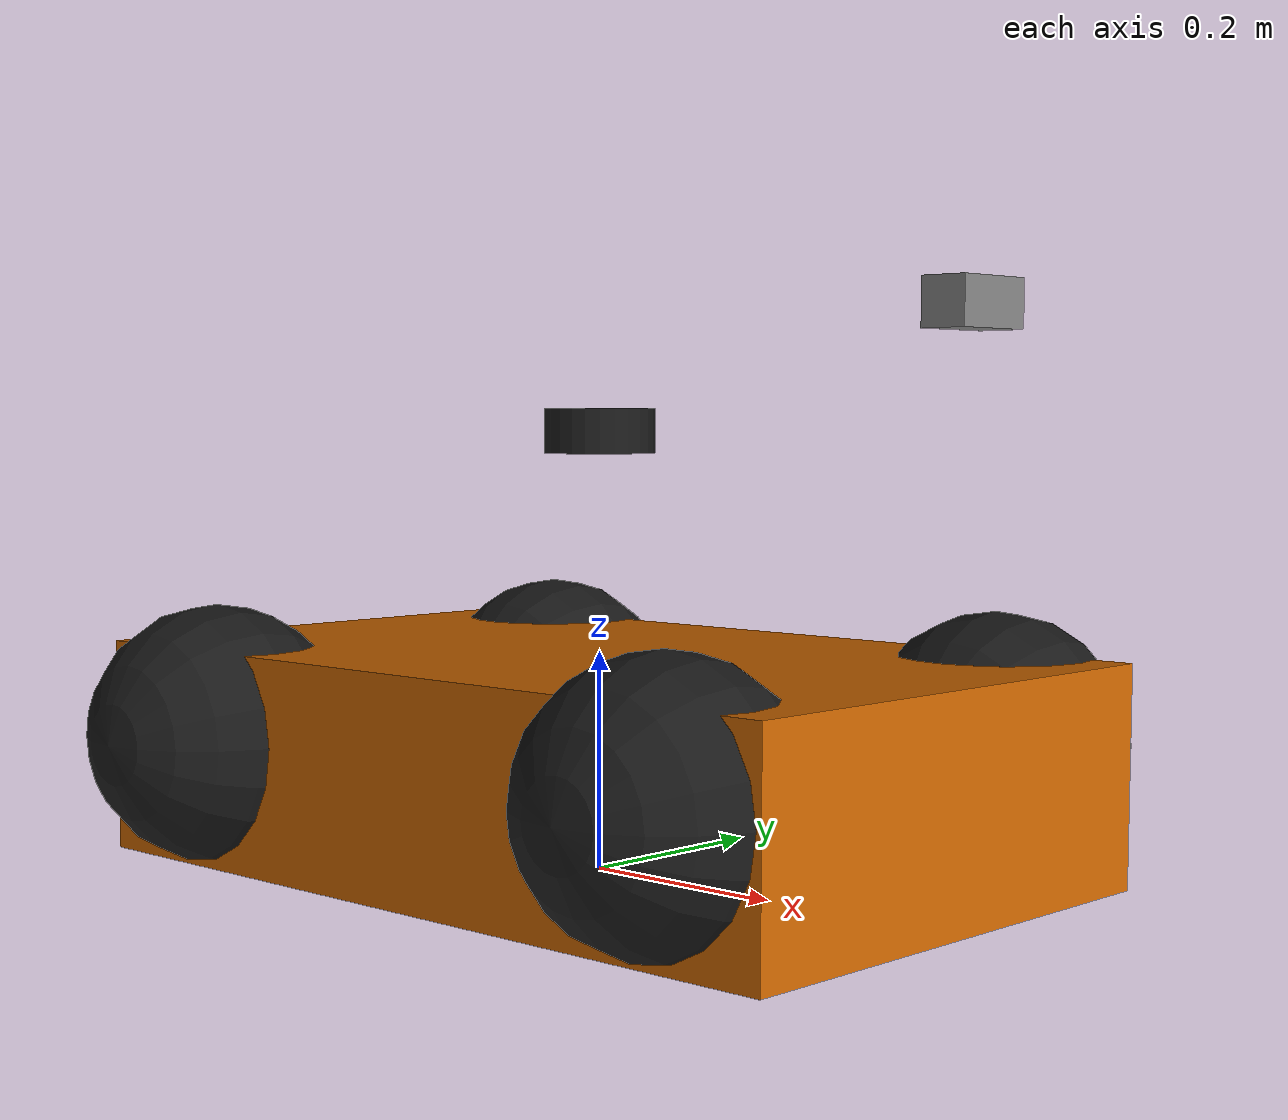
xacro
<?xml version="1.0"?>
<robot name="mecanum_robot" xmlns:xacro="http://www.ros.org/wiki/xacro"
                             xmlns:gz="http://gazebosim.org/schema">

  <material name="orange"><color rgba="0.8 0.4 0.0 1.0"/></material>
  <material name="black"> <color rgba="0.1 0.1 0.1 1.0"/></material>
  <material name="white"> <color rgba="0.9 0.9 0.9 1.0"/></material>
  <material name="grey">  <color rgba="0.5 0.5 0.5 1.0"/></material>

  <!-- ═══════════════════════════════════════════════════════════════
       BASE BODY
  ═══════════════════════════════════════════════════════════════ -->
  <link name="base_link">
    <collision>
      <origin xyz="0 0 0.1" rpy="0 0 0"/>
      <geometry><box size="0.8 0.5 0.2"/></geometry>
    </collision>
    <visual>
      <origin xyz="0 0 0.1" rpy="0 0 0"/>
      <geometry><box size="0.8 0.5 0.2"/></geometry>
      <material name="orange"/>
    </visual>
    <inertial>
      <origin xyz="0 0 0.1" rpy="0 0 0"/>
      <mass value="10.0"/>
      <inertia ixx="0.22" ixy="0.0" ixz="0.0"
               iyy="0.57" iyz="0.0" izz="0.69"/>
    </inertial>
  </link>

  <!-- ═══════════════════════════════════════════════════════════════
       MECANUM WHEELS  (sphere collision + angled friction)
  ═══════════════════════════════════════════════════════════════ -->
  <xacro:macro name="wheel" params="name x y">
    <joint name="${name}_joint" type="continuous">
      <origin xyz="${x} ${y} 0.12" rpy="${-pi/2} 0 0"/>
      <parent link="base_link"/>
      <child link="${name}"/>
      <axis xyz="0 0 1"/>
      <dynamics damping="0.2"/>
    </joint>
    <link name="${name}">
      <collision><geometry><sphere radius="0.12"/></geometry></collision>
      <visual>
        <geometry><sphere radius="0.12"/></geometry>
        <material name="black"/>
      </visual>
      <inertial>
        <mass value="1.0"/>
        <inertia ixx="0.0096" ixy="0.0" ixz="0.0"
                 iyy="0.0096" iyz="0.0" izz="0.0072"/>
      </inertial>
    </link>
  </xacro:macro>

  <xacro:wheel name="front_left_wheel"  x=" 0.28" y=" 0.22"/>
  <xacro:wheel name="front_right_wheel" x=" 0.28" y="-0.22"/>
  <xacro:wheel name="rear_left_wheel"   x="-0.28" y=" 0.22"/>
  <xacro:wheel name="rear_right_wheel"  x="-0.28" y="-0.22"/>

  <!-- fdir1: FL+RR = (1,-1,0), FR+RL = (1,+1,0) to simulate 45° rollers -->
  <gazebo reference="front_left_wheel">
    <collision><surface><friction><ode>
      <mu>1.0</mu><mu2>0.0</mu2>
      <fdir1 gz:expressed_in="base_link">1 -1 0</fdir1>
    </ode></friction></surface></collision>
  </gazebo>
  <gazebo reference="front_right_wheel">
    <collision><surface><friction><ode>
      <mu>1.0</mu><mu2>0.0</mu2>
      <fdir1 gz:expressed_in="base_link">1 1 0</fdir1>
    </ode></friction></surface></collision>
  </gazebo>
  <gazebo reference="rear_left_wheel">
    <collision><surface><friction><ode>
      <mu>1.0</mu><mu2>0.0</mu2>
      <fdir1 gz:expressed_in="base_link">1 1 0</fdir1>
    </ode></friction></surface></collision>
  </gazebo>
  <gazebo reference="rear_right_wheel">
    <collision><surface><friction><ode>
      <mu>1.0</mu><mu2>0.0</mu2>
      <fdir1 gz:expressed_in="base_link">1 -1 0</fdir1>
    </ode></friction></surface></collision>
  </gazebo>

  <link name="lidar_link">
    <visual>
      <geometry><cylinder radius="0.05" length="0.04"/></geometry>
      <material name="black"/>
    </visual>
    <collision>
      <geometry><cylinder radius="0.05" length="0.04"/></geometry>
    </collision>
    <inertial>
      <mass value="0.1"/>
      <inertia ixx="0.0001" ixy="0" ixz="0"
               iyy="0.0001" iyz="0" izz="0.0001"/>
    </inertial>
  </link>

  <joint name="lidar_joint" type="fixed">
    <origin xyz="0 0 0.4" rpy="0 0 0"/>
    <parent link="base_link"/>
    <child link="lidar_link"/>
  </joint>

  <gazebo reference="lidar_link">
    <sensor name="lidar" type="gpu_lidar">
      <topic>/lidar</topic>
      <gz_frame_id>lidar_link</gz_frame_id>
      <update_rate>10</update_rate>
      <always_on>true</always_on>
      <visualize>false</visualize>
      <lidar>
        <scan>
          <horizontal>
            <samples>360</samples>
            <resolution>1</resolution>
            <min_angle>-3.14159265</min_angle>
            <max_angle>3.14159265</max_angle>
          </horizontal>
        </scan>
        <range><min>0.12</min><max>12.0</max><resolution>0.01</resolution></range>
        <noise><type>gaussian</type><mean>0.0</mean><stddev>0.01</stddev></noise>
      </lidar>
    </sensor>
  </gazebo>

  <link name="camera_link">
    <visual>
      <geometry><box size="0.04 0.08 0.04"/></geometry>
      <material name="grey"/>
    </visual>
    <collision>
      <geometry><box size="0.04 0.08 0.04"/></geometry>
    </collision>
    <inertial>
      <mass value="0.05"/>
      <inertia ixx="0.00001" ixy="0" ixz="0"
               iyy="0.00001" iyz="0" izz="0.00001"/>
    </inertial>
  </link>

  <!-- mounted at front face (x=+0.40), 1.0 m above base_link origin -->
  <joint name="camera_joint" type="fixed">
    <origin xyz="0.40 0 0.5" rpy="0 0 0"/>
    <parent link="base_link"/>
    <child link="camera_link"/>
  </joint>

  <!-- optical frame: z-forward, x-right, y-down (ROS camera convention) -->
  <link name="camera_optical_link"/>
  <joint name="camera_optical_joint" type="fixed">
    <origin xyz="0 0 0" rpy="${-pi/2} 0 ${-pi/2}"/>
    <parent link="camera_link"/>
    <child link="camera_optical_link"/>
  </joint>

  <gazebo reference="camera_link">
    <sensor name="front_camera" type="camera">
      <topic>/front_camera</topic>
      <gz_frame_id>camera_optical_link</gz_frame_id>
      <update_rate>30</update_rate>
      <always_on>true</always_on>
      <visualize>false</visualize>
      <camera>
        <horizontal_fov>1.047</horizontal_fov>     <!-- 60° FOV -->
        <image>
          <width>640</width>
          <height>480</height>
          <format>R8G8B8</format>
        </image>
        <clip><near>0.1</near><far>20.0</far></clip>
        <noise><type>gaussian</type><mean>0.0</mean><stddev>0.007</stddev></noise>
      </camera>
    </sensor>
  </gazebo>

  <link name="imu_link">
    <visual>
      <geometry><box size="0.02 0.02 0.01"/></geometry>
      <material name="white"/>
    </visual>
    <inertial>
      <mass value="0.01"/>
      <inertia ixx="0.000001" ixy="0" ixz="0"
               iyy="0.000001" iyz="0" izz="0.000001"/>
    </inertial>
  </link>

  <joint name="imu_joint" type="fixed">
    <origin xyz="0 0 0.12" rpy="0 0 0"/>
    <parent link="base_link"/>
    <child link="imu_link"/>
  </joint>

  <gazebo reference="imu_link">
    <sensor name="imu" type="imu">
      <topic>/imu_raw</topic>
      <gz_frame_id>imu_link</gz_frame_id>
      <update_rate>100</update_rate>
      <always_on>true</always_on>
      <imu>
        <angular_velocity>
          <x><noise type="gaussian"><mean>0</mean><stddev>0.009</stddev></noise></x>
          <y><noise type="gaussian"><mean>0</mean><stddev>0.009</stddev></noise></y>
          <z><noise type="gaussian"><mean>0</mean><stddev>0.009</stddev></noise></z>
        </angular_velocity>
        <linear_acceleration>
          <x><noise type="gaussian"><mean>0</mean><stddev>0.100</stddev></noise></x>
          <y><noise type="gaussian"><mean>0</mean><stddev>0.100</stddev></noise></y>
          <z><noise type="gaussian"><mean>0</mean><stddev>0.100</stddev></noise></z>
        </linear_acceleration>
      </imu>
    </sensor>
  </gazebo>

  <gazebo>
    <plugin filename="ignition-gazebo-velocity-control-system"
            name="ignition::gazebo::systems::VelocityControl">
      <topic>/cmd_vel_gz</topic>
    </plugin>
  </gazebo>

</robot>
